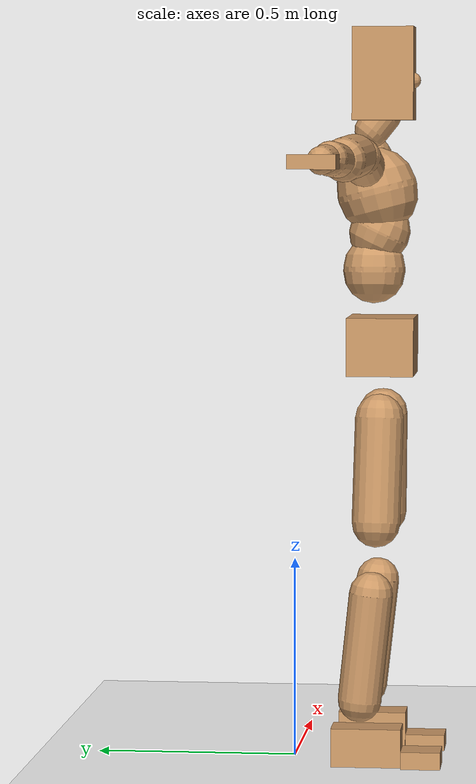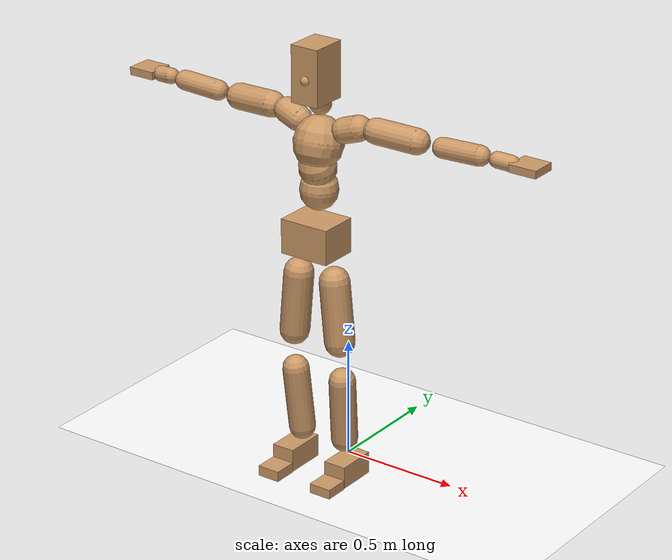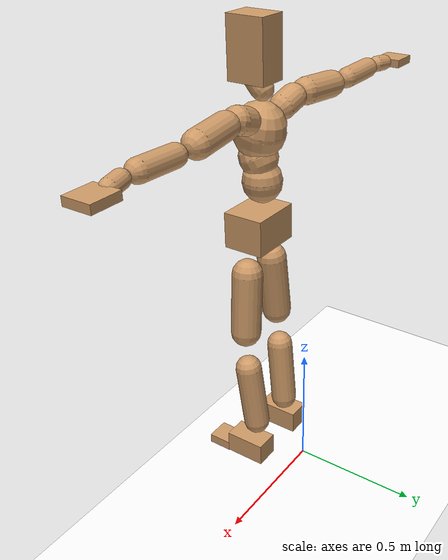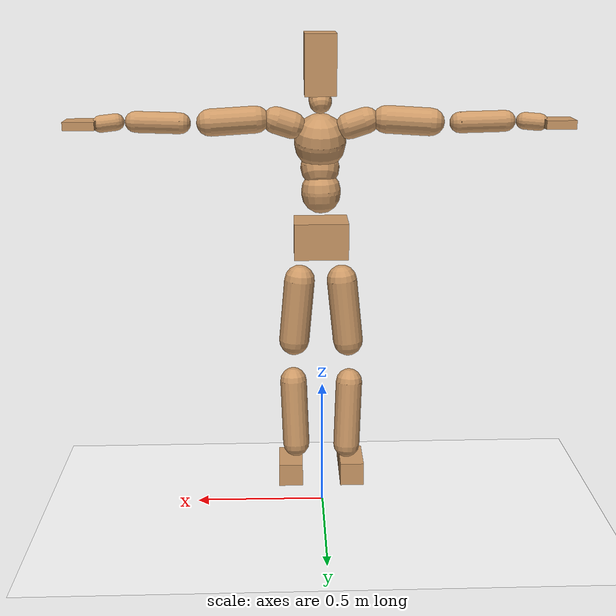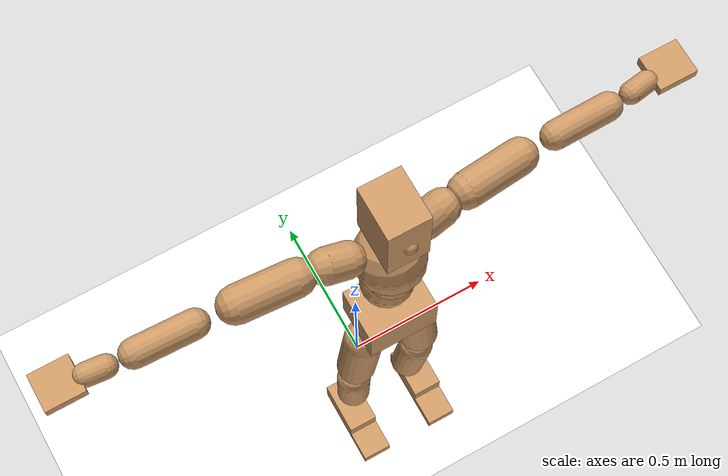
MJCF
<mujoco model="humanoid">
  <option integrator="implicitfast" />

  <visual>
    <global offwidth="1280" offheight="960" />
    <headlight active="1" ambient="0.34 0.34 0.34" diffuse="0.5 0.5 0.5" />
  </visual>

  <default>
    <joint damping="2" stiffness="2" armature="0.01" limited="true" solimplimit="0 .99 .01" />
    <geom condim="1" friction="0.7 0.005 0.0001" solimp=".99 .99 .003" solref="0.015 1" margin="0.001" rgba="0.8 0.6 .4 1" />
    <default class="smplcontact">
      <geom condim="3" friction="1. 0.005 0.0001" solref="0.015 1" solimp="0.98 0.98 0.001" priority="1" />
    </default>
    <default class="stiff_medium">
      <joint stiffness="10" />
    </default>
    <default class="stiff_medium_higher">
      <joint stiffness="50" />
    </default>
    <default class="stiff_high">
      <joint stiffness="100" />
    </default>
  </default>

  <asset>
    <texture type="skybox" builtin="gradient" rgb1="0.99 0.99 0.99" rgb2="0.608 0.828 0.892" width="100" />
    <texture builtin="flat" height="1278" mark="cross" markrgb="1 1 1" name="texgeom" random="0.01" rgb1="0.8 0.6 0.4" rgb2="0.8 0.6 0.4" type="cube" width="127" />
    <texture name="texplane" type="2d" builtin="checker" markrgb="1 1 1" rgb1="0.756 0.772 0.76" rgb2="0.6 0.6 0.6" width="100" height="100" />
    <material name="MatPlane" reflectance="0.5" texture="texplane" texrepeat="1 1" texuniform="true" />
    <material name="geom" texture="texgeom" texuniform="true" />
  </asset>

  <worldbody>
    <light name="tracking_light" pos="0 0 7" dir="0 0 -1" directional="true" cutoff="100" exponent="1" diffuse="1 1 1" specular="0.1 0.1 0.1" mode="trackcom" />
    <camera name="back" pos="0 3 2.4" xyaxes="-1 0 0 0 -1 2" mode="trackcom" />
    <camera name="side" pos="-3 0 2.4" xyaxes="0 -1 0 1 0 2" mode="trackcom" />
    <camera name="front_side" pos="-2.8 -2.8 0.8" xyaxes="0.5 -0.5 0 0.1 0.1 1" mode="trackcom" />
    <geom condim="3" name="floor" pos="0 0 0" rgba="1 1 1 1" size="100 100 .2" type="plane" material="MatPlane" />
    <body name="Pelvis" pos="-0.0018 -0.2233 1.05109" euler="90 0 0">
      <site name="Pelvis" size="0.01" />
      <freejoint name="Pelvis" />
      <geom type="box" pos="-0.0000 -0.0121 -0.0055" size="0.1069 0.0722 0.083" quat="1.0000 0.0000 0.0000 0.0000" density="3165.830099" name="Pelvis" />
      <body name="L_Hip" pos="0.0781875 -0.102825 -0.00765">
        <joint name="L_Hip_x" type="hinge" pos="0 0 0" axis="1 0 0" stiffness="12.190417346938776" range="-160.0 22.92" class="stiff_medium" damping="19.23943835853268" armature="0.013495335550763795"/>
        <joint name="L_Hip_y" type="hinge" pos="0 0 0" axis="0 1 0" stiffness="12.1624156122449" range="-70.0 70.0" class="stiff_medium" damping="12.013485255911052" armature="0.011866378571103064"/>
        <joint name="L_Hip_z" type="hinge" pos="0 0 0" axis="0 0 1" stiffness="12.164813061224491" range="-28.65 90.0" class="stiff_medium" damping="12.81394800146982" armature="0.013497721876857558"/>
        <geom type="capsule" density="2040.816327" fromto="0.0077625 -0.084375 -0.0010125 0.030825 -0.337725 -0.00405" size="0.0615" name="L_Hip" />
        <body name="L_Knee" pos="0.0385875 -0.4221 -0.0050625">
          <joint name="L_Knee_x" type="hinge" pos="0 0 0" axis="1 0 0" range="-5.16 171.89" damping="10.076823862713264" armature="0.013188848617403132" stiffness="2.4059714693877554"/>
          <joint name="L_Knee_y" type="hinge" pos="0 0 0" axis="0 1 0" range="-4.58 6.88" damping="9.48610001940017" armature="0.011596019506642572" stiffness="2.4250264693877552"/>
          <joint name="L_Knee_z" type="hinge" pos="0 0 0" axis="0 0 1" range="-6.88 4.58" damping="10.063496829521753" armature="0.013200099383969117" stiffness="2.3975664285714284"/>
          <geom type="capsule" density="1234.567901" fromto="-0.0030375 -0.08955 -0.0097875 -0.0122625 -0.3582 -0.039375" size="0.0541" name="L_Knee" />
          <body name="L_Ankle" pos="-0.0153 -0.44775 -0.0491625">
            <joint name="L_Ankle_x" type="hinge" pos="0 0 0" axis="1 0 0" range="-45.84 45.84" class="stiff_medium" damping="6.8975328184231754" armature="0.011747130867095517" stiffness="11.250018673469388"/>
            <joint name="L_Ankle_y" type="hinge" pos="0 0 0" axis="0 1 0" range="-74.48 22.92" class="stiff_medium" damping="3.4392113884775433" armature="0.011682135831686723" stiffness="11.250011836734695"/>
            <joint name="L_Ankle_z" type="hinge" pos="0 0 0" axis="0 0 1" range="-4.58 4.58" class="stiff_medium" damping="6.7519785458254935" armature="0.011256596119330307" stiffness="11.25"/>
            <geom type="box" pos="0.0262125 -0.0268875 0.027225" size="0.0483 0.0464 0.085" quat="1.0000 0.0000 0.0000 0.0000" density="449.071558" name="L_Ankle" class="smplcontact" />
            <body name="L_Toe" pos="0.0297 -0.062775 0.134213">
              <joint name="L_Toe_x" type="hinge" pos="0 0 0" axis="1 0 0" range="-91.67 22.92" armature="0.011009874139730367" damping="2.2258578936847395" stiffness="2.25"/>
              <joint name="L_Toe_y" type="hinge" pos="0 0 0" axis="0 1 0" range="-4.58 4.58" armature="0.010711537859158219" damping="2.195493574716446" stiffness="2.25"/>
              <joint name="L_Toe_z" type="hinge" pos="0 0 0" axis="0 0 1" range="-4.58 4.58" armature="0.010108317957718682" damping="2.1327782540558236" stiffness="2.25"/>
              <geom type="box" pos="-0.003375 0.0061875 0.0279" size="0.0478 0.02 0.0496" quat="1.0000 0.0000 0.0000 0.0000" density="423.206892" name="L_Toe" class="smplcontact" />
            </body>
          </body>
        </body>
      </body>
      <body name="R_Hip" pos="-0.0761625 -0.101813 -0.0048375">
        <joint name="R_Hip_x" type="hinge" pos="0 0 0" axis="1 0 0" stiffness="12.190417346938776" range="-160.0 22.92" class="stiff_medium" damping="19.23943835853268" armature="0.013495335550763795"/>
        <joint name="R_Hip_y" type="hinge" pos="0 0 0" axis="0 1 0" stiffness="12.1624156122449" range="-70.0 70.0" class="stiff_medium" damping="12.013485255911052" armature="0.011866378571103064"/>
        <joint name="R_Hip_z" type="hinge" pos="0 0 0" axis="0 0 1" stiffness="12.164813061224491" range="-90.0 28.65" class="stiff_medium" damping="12.81394800146982" armature="0.013497721876857558"/>
        <geom type="capsule" density="2040.816327" fromto="-0.0086625 -0.0860625 -0.002025 -0.034425 -0.344362 -0.0079875" size="0.0606" name="R_Hip" />
        <body name="R_Knee" pos="-0.0430875 -0.430425 -0.0100125">
          <joint name="R_Knee_x" type="hinge" pos="0 0 0" axis="1 0 0" range="-5.16 171.89" damping="10.076823862713264" armature="0.013188848617403132" stiffness="2.4059714693877554"/>
          <joint name="R_Knee_y" type="hinge" pos="0 0 0" axis="0 1 0" range="-6.88 4.58" damping="9.48610001940017" armature="0.011596019506642572" stiffness="2.4250264693877552"/>
          <joint name="R_Knee_z" type="hinge" pos="0 0 0" axis="0 0 1" range="-4.58 6.88" damping="10.063496829521753" armature="0.013200099383969117" stiffness="2.3975664285714284"/>
          <geom type="capsule" density="1234.567901" fromto="0.0036 -0.0896625 -0.0095625 0.014175 -0.358537 -0.038025" size="0.0541" name="R_Knee" />
          <body name="R_Ankle" pos="0.017775 -0.4482 -0.0475875">
            <joint name="R_Ankle_x" type="hinge" pos="0 0 0" axis="1 0 0" range="-45.84 45.84" class="stiff_medium" damping="6.8975328184231754" armature="0.011747130867095517" stiffness="11.250018673469388"/>
            <joint name="R_Ankle_y" type="hinge" pos="0 0 0" axis="0 1 0" range="-22.92 74.48" class="stiff_medium" damping="3.4392113884775433" armature="0.011682135831686723" stiffness="11.250011836734695"/>
            <joint name="R_Ankle_z" type="hinge" pos="0 0 0" axis="0 0 1" range="-4.58 4.58" class="stiff_medium" damping="6.7519785458254935" armature="0.011256596119330307" stiffness="11.25"/>
            <geom type="box" pos="-0.02385 -0.019575 0.0288" size="0.0483 0.0478 0.0865" quat="1.0000 0.0000 0.0000 0.0000" density="434.700981" name="R_Ankle" class="smplcontact" />
            <body name="R_Toe" pos="-0.028575 -0.0541125 0.138713">
              <joint name="R_Toe_x" type="hinge" pos="0 0 0" axis="1 0 0" range="-91.67 22.92" armature="0.011009874139730367" damping="2.2258578936847395" stiffness="2.25"/>
              <joint name="R_Toe_y" type="hinge" pos="0 0 0" axis="0 1 0" range="-4.58 4.58" armature="0.010711537859158219" damping="2.195493574716446" stiffness="2.25"/>
              <joint name="R_Toe_z" type="hinge" pos="0 0 0" axis="0 0 1" range="-4.58 4.58" armature="0.010108317957718682" damping="2.1327782540558236" stiffness="2.25"/>
              <geom type="box" pos="0.004725 0.0050625 0.0255375" size="0.0479 0.0216 0.0493" quat="1.0000 0.0000 0.0000 0.0000" density="407.384095" name="R_Toe" class="smplcontact" />
            </body>
          </body>
        </body>
      </body>
      <body name="Torso" pos="-0.0025 0.109 -0.0267">
        <joint name="Torso_x" type="hinge" pos="0 0 0" axis="1 0 0" range="-25.78 57.3" class="stiff_medium" damping="15.601174334598198" armature="0.01047626555893536" stiffness="10.325844081632653"/>
        <joint name="Torso_y" type="hinge" pos="0 0 0" axis="0 1 0" range="-57.3 57.3" class="stiff_high" damping="22.821338610517834" armature="0.012668353656497757" stiffness="102.77844897959183"/>
        <joint name="Torso_z" type="hinge" pos="0 0 0" axis="0 0 1" range="-34.38 34.38" class="stiff_high" damping="21.414857312023496" armature="0.011223378132891131" stiffness="102.15197872340424"/>
        <geom type="capsule" density="2040.816327" fromto="0.0025 0.0608 0.0005 0.003 0.0743 0.0006" size="0.0769" name="Torso" />
        <body name="Spine" pos="0.0055 0.1352 0.0011">
          <joint name="Spine_x" type="hinge" pos="0 0 0" axis="1 0 0" stiffness="10.390365918367348" range="-25.78 57.3" class="stiff_medium" damping="15.72677453798408" armature="0.010579519926301023"/>
          <joint name="Spine_y" type="hinge" pos="0 0 0" axis="0 1 0" stiffness="10.39918551020408" range="-57.3 57.3" class="stiff_high" damping="9.188969975740159" armature="0.012686866367473126"/>
          <joint name="Spine_z" type="hinge" pos="0 0 0" axis="0 0 1" stiffness="20.94420693877551" range="-34.38 34.38" class="stiff_high" damping="13.309204568844795" armature="0.011746481097584329"/>
          <geom type="capsule" density="2040.816327" fromto="0.0007 0.0238 0.0114 0.0008 0.0291 0.014" size="0.0755" name="Spine" />
          <body name="Chest" pos="0.0015 0.0529 0.0254">
            <joint name="Chest_x" type="hinge" pos="0 0 0" axis="1 0 0" stiffness="10.58973530612245" range="-25.78 57.3" class="stiff_medium" damping="15.923502909070253" armature="0.010641665414267277"/>
            <joint name="Chest_y" type="hinge" pos="0 0 0" axis="0 1 0" stiffness="11.123088958333334" range="-57.3 57.3" class="stiff_high" damping="9.504893386205909" armature="0.012690803368218219"/>
            <joint name="Chest_z" type="hinge" pos="0 0 0" axis="0 0 1" stiffness="21.003702448979592" range="-34.38 34.38" class="stiff_high" damping="13.458190566120912" armature="0.011976915720374792"/>
            <geom type="capsule" density="2040.816327" fromto="-0.0009 0.0682 -0.0173 -0.001 0.0833 -0.0212" size="0.1002" name="Chest" />
            <body name="Neck" pos="-0.0028 0.2139 -0.0429">
              <joint name="Neck_x" type="hinge" pos="0 0 0" axis="1 0 0" range="-28.65 57.3" class="stiff_medium_higher" damping="10.000000000000027" armature="0.010000000000000054" stiffness="50.0"/>
              <joint name="Neck_y" type="hinge" pos="0 0 0" axis="0 1 0" range="-40.11 40.11" class="stiff_medium_higher" damping="10.0" armature="0.01" stiffness="50.0"/>
              <joint name="Neck_z" type="hinge" pos="0 0 0" axis="0 0 1" range="-40.11 40.11" class="stiff_medium_higher" damping="10.000000000000025" armature="0.010000000000000049" stiffness="50.0"/>
              <geom type="capsule" density="1000" fromto="0.001 0.013 0.0103 0.0041 0.052 0.0411" size="0.0436" name="Neck" />
              <body name="Head" pos="0.0052 0.065 0.0513">
                <joint name="Head_x" type="hinge" pos="0 0 0" axis="1 0 0" range="-28.65 57.3" class="stiff_medium_higher" damping="2.0000000000000027" armature="0.010000000000000026" stiffness="50.0"/>
                <joint name="Head_y" type="hinge" pos="0 0 0" axis="0 1 0" range="-40.11 40.11" class="stiff_medium_higher" damping="2.0" armature="0.01" stiffness="50.0"/>
                <joint name="Head_z" type="hinge" pos="0 0 0" axis="0 0 1" range="-40.11 40.11" class="stiff_medium_higher" damping="2.000000000000001" armature="0.010000000000000009" stiffness="50.0"/>
                <geom type="box" pos="-0.0042 0.0876 -0.0116" size="0.0606 0.1154 0.076" quat="1.0000 0.0000 0.0000 0.0000" density="1018.069894" name="Head" />
                <geom type="capsule" name="nose" size="0.02 0.01" pos="0 0.07 0.05" quat="1 0 0 0" mass="0" contype="0" conaffinity="0" />
              </body>
            </body>
            <body name="L_Thorax" pos="0.08668 0.13387 -0.03751">
              <joint name="L_Thorax_x" type="hinge" pos="0 0 0" axis="1 0 0" range="-10.89 4.58" class="stiff_medium_higher" damping="23.484953053517422" armature="0.011814903262347297" stiffness="58.352468877551026"/>
              <joint name="L_Thorax_y" type="hinge" pos="0 0 0" axis="0 1 0" range="-28.65 17.19" class="stiff_medium_higher" damping="24.434884191521103" armature="0.012759387174304943" stiffness="58.49257857142858"/>
              <joint name="L_Thorax_z" type="hinge" pos="0 0 0" axis="0 0 1" range="-31.51 40.11" class="stiff_medium_higher" damping="24.435380867856836" armature="0.012760243243334092" stiffness="58.491032142857144"/>
              <geom type="capsule" density="1000" fromto="0.02002 0.00671 -0.00198 0.08008 0.02684 -0.00781" size="0.0521" name="L_Thorax" />
              <body name="L_Shoulder" pos="0.1001 0.03355 -0.00979">
                <joint name="L_Shoulder_x" type="hinge" pos="0 0 0" axis="1 0 0" range="-97.4 97.4" class="stiff_medium" damping="6.925509502213942" armature="0.011436141131748331" stiffness="11.64988"/>
                <joint name="L_Shoulder_y" type="hinge" pos="0 0 0" axis="0 1 0" range="-108.86 80.21" class="stiff_medium" damping="7.316560324521944" armature="0.012722359703116881" stiffness="11.68809530612245"/>
                <joint name="L_Shoulder_z" type="hinge" pos="0 0 0" axis="0 0 1" range="-97.4 85.94" class="stiff_medium" damping="7.3161640813468045" armature="0.012723435702067624" stiffness="11.685841020408162"/>
                <geom type="capsule" density="1000" fromto="0.05709 -0.00286 -0.00605 0.22847 -0.01122 -0.0242" size="0.0517" name="L_Shoulder" />
                <body name="L_Elbow" pos="0.28556 -0.01408 -0.03025">
                  <joint name="L_Elbow_x" type="hinge" pos="0 0 0" axis="1 0 0" range="-17.19 4.58" damping="5.601396344944928" armature="0.010847020977713206" stiffness="2.314046673469388"/>
                  <joint name="L_Elbow_y" type="hinge" pos="0 0 0" axis="0 1 0" range="-180.0 17.19" damping="6.023798480907977" armature="0.012542680731684354" stiffness="2.3144110204081634"/>
                  <joint name="L_Elbow_z" type="hinge" pos="0 0 0" axis="0 0 1" range="-100.84 4.58" damping="6.024346472417808" armature="0.01254832164075891" stiffness="2.313791530612245"/>
                  <geom type="capsule" density="1000" fromto="0.05478 0.00198 -0.00022 0.21934 0.00792 -0.00099" size="0.0405" name="L_Elbow" />
                  <body name="L_Wrist" pos="0.27412 0.0099 -0.00132">
                    <joint name="L_Wrist_x" type="hinge" pos="0 0 0" axis="1 0 0" range="-180.0 22.92" armature="0.010707540477697047" damping="2.1901175856847197" stiffness="2.2398304489795917"/>
                    <joint name="L_Wrist_y" type="hinge" pos="0 0 0" axis="0 1 0" range="-17.19 17.19" armature="0.01196263499280339" damping="2.317938796584462" stiffness="2.245675918367347"/>
                    <joint name="L_Wrist_z" type="hinge" pos="0 0 0" axis="0 0 1" range="-22.92 22.92" armature="0.012031856829646042" damping="2.3234148559287764" stiffness="2.2433181632653056"/>
                    <geom type="capsule" density="1000" fromto="0.01848 -0.00176 -0.0033 0.07392 -0.00715 -0.0132" size="0.0318" name="L_Wrist" class="smplcontact" />
                    <body name="L_Hand" pos="0.0924 -0.00902 -0.01639">
                      <joint name="L_Hand_x" type="hinge" pos="0 0 0" axis="1 0 0" range="-17.19 17.19" armature="0.010091488937092783" damping="2.1071912899214498" stiffness="2.1999999999999997"/>
                      <joint name="L_Hand_y" type="hinge" pos="0 0 0" axis="0 1 0" range="-51.57 51.57" armature="0.011106432471592882" damping="2.2106176258007326" stiffness="2.1999999999999997"/>
                      <joint name="L_Hand_z" type="hinge" pos="0 0 0" axis="0 0 1" range="-91.67 91.67" armature="0.011376979537969931" damping="2.2373803871283866" stiffness="2.1999999999999997"/>
                      <geom type="box" pos="0.05423 0.0011 -0.00638" size="0.0585 0.0158 0.0538" quat="1.0000 0.0000 0.0000 0.0000" density="400.552564" name="L_Hand" class="smplcontact" />
                    </body>
                  </body>
                </body>
              </body>
            </body>
            <body name="R_Thorax" pos="-0.08998 0.13068 -0.04246">
              <joint name="R_Thorax_x" type="hinge" pos="0 0 0" axis="1 0 0" range="-10.89 4.58" class="stiff_medium_higher" damping="23.484953053517422" armature="0.011814903262347297" stiffness="58.352468877551026"/>
              <joint name="R_Thorax_y" type="hinge" pos="0 0 0" axis="0 1 0" range="-17.19 28.65" class="stiff_medium_higher" damping="24.434884191521103" armature="0.012759387174304943" stiffness="58.49257857142858"/>
              <joint name="R_Thorax_z" type="hinge" pos="0 0 0" axis="0 0 1" range="-40.11 31.51" class="stiff_medium_higher" damping="24.435380867856836" armature="0.012760243243334092" stiffness="58.491032142857144"/>
              <geom type="capsule" density="1000" fromto="-0.02112 0.00715 -0.00198 -0.08448 0.0286 -0.00803" size="0.0511" name="R_Thorax" />
              <body name="R_Shoulder" pos="-0.1056 0.03586 -0.01001">
                <joint name="R_Shoulder_x" type="hinge" pos="0 0 0" axis="1 0 0" range="-97.4 97.4" class="stiff_medium" damping="6.925509502213942" armature="0.011436141131748331" stiffness="11.64988"/>
                <joint name="R_Shoulder_y" type="hinge" pos="0 0 0" axis="0 1 0" range="-80.21 108.86" class="stiff_medium" damping="7.316560324521944" armature="0.012722359703116881" stiffness="11.68809530612245"/>
                <joint name="R_Shoulder_z" type="hinge" pos="0 0 0" axis="0 0 1" range="-85.94 97.4" class="stiff_medium" damping="7.3161640813468045" armature="0.012723435702067624" stiffness="11.685841020408162"/>
                <geom type="capsule" density="1000" fromto="-0.05577 -0.00297 -0.00473 -0.2233 -0.01177 -0.01881" size="0.0531" name="R_Shoulder" />
                <body name="R_Elbow" pos="-0.27907 -0.01463 -0.02354">
                  <joint name="R_Elbow_x" type="hinge" pos="0 0 0" axis="1 0 0" range="-17.19 4.58" damping="5.601396344944928" armature="0.010847020977713206" stiffness="2.314046673469388"/>
                  <joint name="R_Elbow_y" type="hinge" pos="0 0 0" axis="0 1 0" range="-17.19 180.0" damping="6.023798480907977" armature="0.012542680731684354" stiffness="2.3144110204081634"/>
                  <joint name="R_Elbow_z" type="hinge" pos="0 0 0" axis="0 0 1" range="-4.58 100.84" damping="6.024346472417808" armature="0.01254832164075891" stiffness="2.313791530612245"/>
                  <geom type="capsule" density="1000" fromto="-0.05621 0.00176 -0.00121 -0.22462 0.00682 -0.00484" size="0.0408" name="R_Elbow" />
                  <body name="R_Wrist" pos="-0.28083 0.00858 -0.00616">
                    <joint name="R_Wrist_x" type="hinge" pos="0 0 0" axis="1 0 0" range="-180.0 22.92" armature="0.010707540477697047" damping="2.1901175856847197" stiffness="2.2398304489795917"/>
                    <joint name="R_Wrist_y" type="hinge" pos="0 0 0" axis="0 1 0" range="-17.19 17.19" armature="0.01196263499280339" damping="2.317938796584462" stiffness="2.245675918367347"/>
                    <joint name="R_Wrist_z" type="hinge" pos="0 0 0" axis="0 0 1" range="-22.92 22.92" armature="0.012031856829646042" damping="2.3234148559287764" stiffness="2.2433181632653056"/>
                    <geom type="capsule" density="1000" fromto="-0.01859 -0.00132 -0.00231 -0.07447 -0.00539 -0.00913" size="0.0326" name="R_Wrist" class="smplcontact" />
                    <body name="R_Hand" pos="-0.09306 -0.00671 -0.01133">
                      <joint name="R_Hand_x" type="hinge" pos="0 0 0" axis="1 0 0" range="-17.19 17.19" armature="0.010091488937092783" damping="2.1071912899214498" stiffness="2.1999999999999997"/>
                      <joint name="R_Hand_y" type="hinge" pos="0 0 0" axis="0 1 0" range="-51.57 51.57" armature="0.011106432471592882" damping="2.2106176258007326" stiffness="2.1999999999999997"/>
                      <joint name="R_Hand_z" type="hinge" pos="0 0 0" axis="0 0 1" range="-91.67 91.67" armature="0.011376979537969931" damping="2.2373803871283866" stiffness="2.1999999999999997"/>
                      <geom type="box" pos="-0.05082 -0.00099 -0.00869" size="0.0569 0.0164 0.0546" quat="1.0000 0.0000 0.0000 0.0000" density="403.679611" name="R_Hand" class="smplcontact" />
                    </body>
                  </body>
                </body>
              </body>
            </body>
          </body>
        </body>
      </body>
    </body>
  </worldbody>
  <actuator>
    <general name="L_Hip_x" joint="L_Hip_x" biastype="affine" gainprm="350.267339766903" biasprm="-262.4898695344799 -219.42751224489797 -2.565258447804357" ctrllimited="true" ctrlrange="-1 1" forcerange="-438.85502448979594 438.85502448979594" />
    <general name="L_Hip_y" joint="L_Hip_y" biastype="affine" gainprm="267.4654887613407" biasprm="0.0 -218.9234810204082 -2.4026970511822103" ctrllimited="true" ctrlrange="-1 1" forcerange="-437.8469620408164 437.8469620408164" />
    <general name="L_Hip_z" joint="L_Hip_z" biastype="affine" gainprm="226.72168417679922" biasprm="117.23030193212499 -218.96663510204084 -2.562789600293964" ctrllimited="true" ctrlrange="-1 1" forcerange="-437.9332702040817 437.9332702040817" />
    <general name="L_Knee_x" joint="L_Knee_x" biastype="affine" gainprm="334.5617487428154" biasprm="315.0606064269393 -216.53743224489799 -2.519205965678316" ctrllimited="true" ctrlrange="-1 1" forcerange="-433.07486448979597 433.07486448979597" />
    <general name="L_Knee_y" joint="L_Knee_y" biastype="affine" gainprm="21.82684590193453" biasprm="4.380606071068885 -218.25238224489797 -2.3715250048500427" ctrllimited="true" ctrlrange="-1 1" forcerange="-436.50476448979595 436.50476448979595" />
    <general name="L_Knee_z" joint="L_Knee_z" biastype="affine" gainprm="21.579687329883924" biasprm="-4.331001820133772 -215.78097857142856 -2.5158742073804383" ctrllimited="true" ctrlrange="-1 1" forcerange="-431.5619571428571 431.5619571428571" />
    <general name="L_Ankle_x" joint="L_Ankle_x" biastype="affine" gainprm="81.00610103169612" biasprm="0.0 -101.2501680612245 -2.2991776061410585" ctrllimited="true" ctrlrange="-1 1" forcerange="-202.500336122449 202.500336122449" />
    <general name="L_Ankle_y" joint="L_Ankle_y" biastype="affine" gainprm="86.06009430266938" biasprm="-45.557068400879196 -101.25010653061226 -2.292807592318362" ctrllimited="true" ctrlrange="-1 1" forcerange="-202.5002130612245 202.5002130612245" />
    <general name="L_Ankle_z" joint="L_Ankle_z" biastype="affine" gainprm="8.093528073810704" biasprm="0.0 -101.25 -2.2506595152751645" ctrllimited="true" ctrlrange="-1 1" forcerange="-202.5 202.5" />
    <general name="L_Toe_x" joint="L_Toe_x" biastype="affine" gainprm="80.99889798934223" biasprm="-48.59651136021711 -81.0 -0.8903431574738958" ctrllimited="true" ctrlrange="-1 1" forcerange="-162.0 162.0" />
    <general name="L_Toe_y" joint="L_Toe_y" biastype="affine" gainprm="6.474822459048563" biasprm="0.0 -81.0 -0.8781974298865785" ctrllimited="true" ctrlrange="-1 1" forcerange="-162.0 162.0" />
    <general name="L_Toe_z" joint="L_Toe_z" biastype="affine" gainprm="6.474822459048563" biasprm="0.0 -81.0 -0.8531113016223295" ctrllimited="true" ctrlrange="-1 1" forcerange="-162.0 162.0" />
    <general name="R_Hip_x" joint="R_Hip_x" biastype="affine" gainprm="350.267339766903" biasprm="-262.4898695344799 -219.42751224489797 -2.565258447804357" ctrllimited="true" ctrlrange="-1 1" forcerange="-438.85502448979594 438.85502448979594" />
    <general name="R_Hip_y" joint="R_Hip_y" biastype="affine" gainprm="267.4654887613407" biasprm="0.0 -218.9234810204082 -2.4026970511822103" ctrllimited="true" ctrlrange="-1 1" forcerange="-437.8469620408164 437.8469620408164" />
    <general name="R_Hip_z" joint="R_Hip_z" biastype="affine" gainprm="226.72168417679922" biasprm="-117.23030193212499 -218.96663510204084 -2.562789600293964" ctrllimited="true" ctrlrange="-1 1" forcerange="-437.9332702040817 437.9332702040817" />
    <general name="R_Knee_x" joint="R_Knee_x" biastype="affine" gainprm="334.5617487428154" biasprm="315.0606064269393 -216.53743224489799 -2.519205965678316" ctrllimited="true" ctrlrange="-1 1" forcerange="-433.07486448979597 433.07486448979597" />
    <general name="R_Knee_y" joint="R_Knee_y" biastype="affine" gainprm="21.82684590193453" biasprm="-4.380606071068885 -218.25238224489797 -2.3715250048500427" ctrllimited="true" ctrlrange="-1 1" forcerange="-436.50476448979595 436.50476448979595" />
    <general name="R_Knee_z" joint="R_Knee_z" biastype="affine" gainprm="21.579687329883924" biasprm="4.331001820133772 -215.78097857142856 -2.5158742073804383" ctrllimited="true" ctrlrange="-1 1" forcerange="-431.5619571428571 431.5619571428571" />
    <general name="R_Ankle_x" joint="R_Ankle_x" biastype="affine" gainprm="81.00610103169612" biasprm="0.0 -101.2501680612245 -2.2991776061410585" ctrllimited="true" ctrlrange="-1 1" forcerange="-202.500336122449 202.500336122449" />
    <general name="R_Ankle_y" joint="R_Ankle_y" biastype="affine" gainprm="86.06009430266938" biasprm="45.557068400879196 -101.25010653061226 -2.292807592318362" ctrllimited="true" ctrlrange="-1 1" forcerange="-202.5002130612245 202.5002130612245" />
    <general name="R_Ankle_z" joint="R_Ankle_z" biastype="affine" gainprm="8.093528073810704" biasprm="0.0 -101.25 -2.2506595152751645" ctrllimited="true" ctrlrange="-1 1" forcerange="-202.5 202.5" />
    <general name="R_Toe_x" joint="R_Toe_x" biastype="affine" gainprm="80.99889798934223" biasprm="-48.59651136021711 -81.0 -0.8903431574738958" ctrllimited="true" ctrlrange="-1 1" forcerange="-162.0 162.0" />
    <general name="R_Toe_y" joint="R_Toe_y" biastype="affine" gainprm="6.474822459048563" biasprm="0.0 -81.0 -0.8781974298865785" ctrllimited="true" ctrlrange="-1 1" forcerange="-162.0 162.0" />
    <general name="R_Toe_z" joint="R_Toe_z" biastype="affine" gainprm="6.474822459048563" biasprm="0.0 -81.0 -0.8531113016223295" ctrllimited="true" ctrlrange="-1 1" forcerange="-162.0 162.0" />
    <general name="Torso_x" joint="Torso_x" biastype="affine" gainprm="179.67210854115288" biasprm="68.16640420338393 -247.8202579591837 -4.160313155892853" ctrllimited="true" ctrlrange="-1 1" forcerange="-371.73038693877555 371.73038693877555" />
    <general name="Torso_y" joint="Torso_y" biastype="affine" gainprm="246.68644747989222" biasprm="0.0 -246.6682775510204 -4.564267722103567" ctrllimited="true" ctrlrange="-1 1" forcerange="-370.0024163265306 370.0024163265306" />
    <general name="Torso_z" joint="Torso_z" biastype="affine" gainprm="147.10968486781817" biasprm="0.0 -245.16474893617018 -4.282971462404699" ctrllimited="true" ctrlrange="-1 1" forcerange="-367.74712340425526 367.74712340425526" />
    <general name="Spine_x" joint="Spine_x" biastype="affine" gainprm="180.79480363139655" biasprm="68.5923472612135 -249.36878204081634 -4.193806543462421" ctrllimited="true" ctrlrange="-1 1" forcerange="-374.0531730612245 374.0531730612245" />
    <general name="Spine_y" joint="Spine_y" biastype="affine" gainprm="249.59883668861366" biasprm="0.0 -249.58045224489794 -4.5944849878700795" ctrllimited="true" ctrlrange="-1 1" forcerange="-374.3706783673469 374.3706783673469" />
    <general name="Spine_z" joint="Spine_z" biastype="affine" gainprm="150.8093979712465" biasprm="0.0 -251.3304832653061 -4.436401522948265" ctrllimited="true" ctrlrange="-1 1" forcerange="-376.9957248979592 376.9957248979592" />
    <general name="Chest_x" joint="Chest_x" biastype="affine" gainprm="184.26387773258654" biasprm="69.90849092598852 -254.15364734693878 -4.246267442418734" ctrllimited="true" ctrlrange="-1 1" forcerange="-381.2304710204082 381.2304710204082" />
    <general name="Chest_y" joint="Chest_y" biastype="affine" gainprm="266.97379921338467" biasprm="0.0 -266.954135 -4.7524466931029545" ctrllimited="true" ctrlrange="-1 1" forcerange="-400.43120250000004 400.43120250000004" />
    <general name="Chest_z" joint="Chest_z" biastype="affine" gainprm="151.23779719887534" biasprm="0.0 -252.0444293877551 -4.486063522040304" ctrllimited="true" ctrlrange="-1 1" forcerange="-378.06664408163266 378.06664408163266" />
    <general name="Neck_x" joint="Neck_x" biastype="affine" gainprm="27.00198885760427" biasprm="9.000662952534757 -36.0 -0.8000000000000022" ctrllimited="true" ctrlrange="-1 1" forcerange="-72.0 72.0" />
    <general name="Neck_y" joint="Neck_y" biastype="affine" gainprm="25.20185626709732" biasprm="0.0 -36.0 -0.8" ctrllimited="true" ctrlrange="-1 1" forcerange="-72.0 72.0" />
    <general name="Neck_z" joint="Neck_z" biastype="affine" gainprm="25.20185626709732" biasprm="0.0 -36.0 -0.800000000000002" ctrllimited="true" ctrlrange="-1 1" forcerange="-72.0 72.0" />
    <general name="Head_x" joint="Head_x" biastype="affine" gainprm="18.001325905069514" biasprm="6.000441968356505 -24.0 -0.8000000000000012" ctrllimited="true" ctrlrange="-1 1" forcerange="-48.0 48.0" />
    <general name="Head_y" joint="Head_y" biastype="affine" gainprm="16.801237511398213" biasprm="0.0 -24.0 -0.8" ctrllimited="true" ctrlrange="-1 1" forcerange="-48.0 48.0" />
    <general name="Head_z" joint="Head_z" biastype="affine" gainprm="16.801237511398213" biasprm="0.0 -24.0 -0.8000000000000004" ctrllimited="true" ctrlrange="-1 1" forcerange="-48.0 48.0" />
    <general name="L_Thorax_x" joint="L_Thorax_x" biastype="affine" gainprm="18.906370442093692" biasprm="-7.711648189373708 -140.04592530612246 -1.878796244281394" ctrllimited="true" ctrlrange="-1 1" forcerange="-280.0918506122449 280.0918506122449" />
    <general name="L_Thorax_y" joint="L_Thorax_y" biastype="affine" gainprm="56.157011727582464" biasprm="-14.039252931895616 -140.38218857142857 -1.9547907353216882" ctrllimited="true" ctrlrange="-1 1" forcerange="-280.76437714285714 280.76437714285714" />
    <general name="L_Thorax_z" joint="L_Thorax_z" biastype="affine" gainprm="87.73688584405964" biasprm="10.535286487837375 -140.37847714285715 -1.954830469428547" ctrllimited="true" ctrlrange="-1 1" forcerange="-280.7569542857143 280.7569542857143" />
    <general name="L_Shoulder_x" joint="L_Shoulder_x" biastype="affine" gainprm="95.06026349386505" biasprm="0.0 -55.91942399999999 -1.846802533923718" ctrllimited="true" ctrlrange="-1 1" forcerange="-111.83884799999998 111.83884799999998" />
    <general name="L_Shoulder_y" joint="L_Shoulder_y" biastype="affine" gainprm="92.56674184278414" biasprm="-14.026747521001564 -56.10285746938776 -1.951082753205852" ctrllimited="true" ctrlrange="-1 1" forcerange="-112.20571493877551 112.20571493877551" />
    <general name="L_Shoulder_z" joint="L_Shoulder_z" biastype="affine" gainprm="89.7440800375507" biasprm="-5.609616871551944 -56.09203689795918 -1.950977088359148" ctrllimited="true" ctrlrange="-1 1" forcerange="-112.18407379591837 112.18407379591837" />
    <general name="L_Elbow_x" joint="L_Elbow_x" biastype="affine" gainprm="15.82633724808071" biasprm="-9.167207749117953 -83.30568024489797 -0.8962234151911885" ctrllimited="true" ctrlrange="-1 1" forcerange="-166.61136048979594 166.61136048979594" />
    <general name="L_Elbow_y" joint="L_Elbow_y" biastype="affine" gainprm="143.37559998082332" biasprm="-118.37811974683223 -83.31879673469388 -0.9638077569452763" ctrllimited="true" ctrlrange="-1 1" forcerange="-166.63759346938775 166.63759346938775" />
    <general name="L_Elbow_z" joint="L_Elbow_z" biastype="affine" gainprm="76.62969758228138" biasprm="-69.9713023076305 -83.29649510204082 -0.9638954355868494" ctrllimited="true" ctrlrange="-1 1" forcerange="-166.59299020408164 166.59299020408164" />
    <general name="L_Wrist_x" joint="L_Wrist_x" biastype="affine" gainprm="23.797899177015026" biasprm="-18.421910125791054 -13.43898269387755 -0.876047034273888" ctrllimited="true" ctrlrange="-1 1" forcerange="-26.8779653877551 26.8779653877551" />
    <general name="L_Wrist_y" joint="L_Wrist_y" biastype="affine" gainprm="4.042514408369691" biasprm="0.0 -13.474055510204082 -0.9271755186337848" ctrllimited="true" ctrlrange="-1 1" forcerange="-26.948111020408163 26.948111020408163" />
    <general name="L_Wrist_z" joint="L_Wrist_z" biastype="affine" gainprm="5.384360182093428" biasprm="0.0 -13.459908979591834 -0.9293659423715106" ctrllimited="true" ctrlrange="-1 1" forcerange="-26.919817959183668 26.919817959183668" />
    <general name="L_Hand_x" joint="L_Hand_x" biastype="affine" gainprm="3.9602916991152934" biasprm="0.0 -13.2 -0.8428765159685799" ctrllimited="true" ctrlrange="-1 1" forcerange="-26.4 26.4" />
    <general name="L_Hand_y" joint="L_Hand_y" biastype="affine" gainprm="11.880875097345879" biasprm="0.0 -13.2 -0.884247050320293" ctrllimited="true" ctrlrange="-1 1" forcerange="-26.4 26.4" />
    <general name="L_Hand_z" joint="L_Hand_z" biastype="affine" gainprm="21.11925189400226" biasprm="0.0 -13.2 -0.8949521548513547" ctrllimited="true" ctrlrange="-1 1" forcerange="-26.4 26.4" />
    <general name="R_Thorax_x" joint="R_Thorax_x" biastype="affine" gainprm="18.906370442093692" biasprm="-7.711648189373708 -140.04592530612246 -1.878796244281394" ctrllimited="true" ctrlrange="-1 1" forcerange="-280.0918506122449 280.0918506122449" />
    <general name="R_Thorax_y" joint="R_Thorax_y" biastype="affine" gainprm="56.157011727582464" biasprm="14.039252931895607 -140.38218857142857 -1.9547907353216882" ctrllimited="true" ctrlrange="-1 1" forcerange="-280.76437714285714 280.76437714285714" />
    <general name="R_Thorax_z" joint="R_Thorax_z" biastype="affine" gainprm="87.73688584405964" biasprm="-10.535286487837375 -140.37847714285715 -1.954830469428547" ctrllimited="true" ctrlrange="-1 1" forcerange="-280.7569542857143 280.7569542857143" />
    <general name="R_Shoulder_x" joint="R_Shoulder_x" biastype="affine" gainprm="95.06026349386505" biasprm="0.0 -55.91942399999999 -1.846802533923718" ctrllimited="true" ctrlrange="-1 1" forcerange="-111.83884799999998 111.83884799999998" />
    <general name="R_Shoulder_y" joint="R_Shoulder_y" biastype="affine" gainprm="92.56674184278414" biasprm="14.026747521001564 -56.10285746938776 -1.951082753205852" ctrllimited="true" ctrlrange="-1 1" forcerange="-112.20571493877551 112.20571493877551" />
    <general name="R_Shoulder_z" joint="R_Shoulder_z" biastype="affine" gainprm="89.7440800375507" biasprm="5.609616871551932 -56.09203689795918 -1.950977088359148" ctrllimited="true" ctrlrange="-1 1" forcerange="-112.18407379591837 112.18407379591837" />
    <general name="R_Elbow_x" joint="R_Elbow_x" biastype="affine" gainprm="15.82633724808071" biasprm="-9.167207749117953 -83.30568024489797 -0.8962234151911885" ctrllimited="true" ctrlrange="-1 1" forcerange="-166.61136048979594 166.61136048979594" />
    <general name="R_Elbow_y" joint="R_Elbow_y" biastype="affine" gainprm="143.37559998082332" biasprm="118.37811974683223 -83.31879673469388 -0.9638077569452763" ctrllimited="true" ctrlrange="-1 1" forcerange="-166.63759346938775 166.63759346938775" />
    <general name="R_Elbow_z" joint="R_Elbow_z" biastype="affine" gainprm="76.62969758228138" biasprm="69.97130230763048 -83.29649510204082 -0.9638954355868494" ctrllimited="true" ctrlrange="-1 1" forcerange="-166.59299020408164 166.59299020408164" />
    <general name="R_Wrist_x" joint="R_Wrist_x" biastype="affine" gainprm="23.797899177015026" biasprm="-18.421910125791054 -13.43898269387755 -0.876047034273888" ctrllimited="true" ctrlrange="-1 1" forcerange="-26.8779653877551 26.8779653877551" />
    <general name="R_Wrist_y" joint="R_Wrist_y" biastype="affine" gainprm="4.042514408369691" biasprm="0.0 -13.474055510204082 -0.9271755186337848" ctrllimited="true" ctrlrange="-1 1" forcerange="-26.948111020408163 26.948111020408163" />
    <general name="R_Wrist_z" joint="R_Wrist_z" biastype="affine" gainprm="5.384360182093428" biasprm="0.0 -13.459908979591834 -0.9293659423715106" ctrllimited="true" ctrlrange="-1 1" forcerange="-26.919817959183668 26.919817959183668" />
    <general name="R_Hand_x" joint="R_Hand_x" biastype="affine" gainprm="3.9602916991152934" biasprm="0.0 -13.2 -0.8428765159685799" ctrllimited="true" ctrlrange="-1 1" forcerange="-26.4 26.4" />
    <general name="R_Hand_y" joint="R_Hand_y" biastype="affine" gainprm="11.880875097345879" biasprm="0.0 -13.2 -0.884247050320293" ctrllimited="true" ctrlrange="-1 1" forcerange="-26.4 26.4" />
    <general name="R_Hand_z" joint="R_Hand_z" biastype="affine" gainprm="21.11925189400226" biasprm="0.0 -13.2 -0.8949521548513547" ctrllimited="true" ctrlrange="-1 1" forcerange="-26.4 26.4" />
  </actuator>
  <contact>
    <exclude body1="Torso" body2="Chest" />
    <exclude body1="Head" body2="Chest" />
    <exclude body1="R_Knee" body2="R_Toe" />
    <exclude body1="R_Knee" body2="L_Ankle" />
    <exclude body1="R_Knee" body2="L_Toe" />
    <exclude body1="L_Knee" body2="L_Toe" />
    <exclude body1="L_Knee" body2="R_Ankle" />
    <exclude body1="L_Knee" body2="R_Toe" />
    <exclude body1="L_Shoulder" body2="Chest" />
    <exclude body1="R_Shoulder" body2="Chest" />
  </contact>
  <sensor>
    <framelinvel name="sensor_Pelvis_framelinvel" objtype="xbody" objname="Pelvis" />
    <framelinvel name="sensor_L_Hip_framelinvel" objtype="xbody" objname="L_Hip" />
    <framelinvel name="sensor_L_Knee_framelinvel" objtype="xbody" objname="L_Knee" />
    <framelinvel name="sensor_L_Ankle_framelinvel" objtype="xbody" objname="L_Ankle" />
    <framelinvel name="sensor_L_Toe_framelinvel" objtype="xbody" objname="L_Toe" />
    <framelinvel name="sensor_R_Hip_framelinvel" objtype="xbody" objname="R_Hip" />
    <framelinvel name="sensor_R_Knee_framelinvel" objtype="xbody" objname="R_Knee" />
    <framelinvel name="sensor_R_Ankle_framelinvel" objtype="xbody" objname="R_Ankle" />
    <framelinvel name="sensor_R_Toe_framelinvel" objtype="xbody" objname="R_Toe" />
    <framelinvel name="sensor_Torso_framelinvel" objtype="xbody" objname="Torso" />
    <framelinvel name="sensor_Spine_framelinvel" objtype="xbody" objname="Spine" />
    <framelinvel name="sensor_Chest_framelinvel" objtype="xbody" objname="Chest" />
    <framelinvel name="sensor_Neck_framelinvel" objtype="xbody" objname="Neck" />
    <framelinvel name="sensor_Head_framelinvel" objtype="xbody" objname="Head" />
    <framelinvel name="sensor_L_Thorax_framelinvel" objtype="xbody" objname="L_Thorax" />
    <framelinvel name="sensor_L_Shoulder_framelinvel" objtype="xbody" objname="L_Shoulder" />
    <framelinvel name="sensor_L_Elbow_framelinvel" objtype="xbody" objname="L_Elbow" />
    <framelinvel name="sensor_L_Wrist_framelinvel" objtype="xbody" objname="L_Wrist" />
    <framelinvel name="sensor_L_Hand_framelinvel" objtype="xbody" objname="L_Hand" />
    <framelinvel name="sensor_R_Thorax_framelinvel" objtype="xbody" objname="R_Thorax" />
    <framelinvel name="sensor_R_Shoulder_framelinvel" objtype="xbody" objname="R_Shoulder" />
    <framelinvel name="sensor_R_Elbow_framelinvel" objtype="xbody" objname="R_Elbow" />
    <framelinvel name="sensor_R_Wrist_framelinvel" objtype="xbody" objname="R_Wrist" />
    <framelinvel name="sensor_R_Hand_framelinvel" objtype="xbody" objname="R_Hand" />
    <frameangvel name="sensor_Pelvis_frameangvel" objtype="xbody" objname="Pelvis" />
    <frameangvel name="sensor_L_Hip_frameangvel" objtype="xbody" objname="L_Hip" />
    <frameangvel name="sensor_L_Knee_frameangvel" objtype="xbody" objname="L_Knee" />
    <frameangvel name="sensor_L_Ankle_frameangvel" objtype="xbody" objname="L_Ankle" />
    <frameangvel name="sensor_L_Toe_frameangvel" objtype="xbody" objname="L_Toe" />
    <frameangvel name="sensor_R_Hip_frameangvel" objtype="xbody" objname="R_Hip" />
    <frameangvel name="sensor_R_Knee_frameangvel" objtype="xbody" objname="R_Knee" />
    <frameangvel name="sensor_R_Ankle_frameangvel" objtype="xbody" objname="R_Ankle" />
    <frameangvel name="sensor_R_Toe_frameangvel" objtype="xbody" objname="R_Toe" />
    <frameangvel name="sensor_Torso_frameangvel" objtype="xbody" objname="Torso" />
    <frameangvel name="sensor_Spine_frameangvel" objtype="xbody" objname="Spine" />
    <frameangvel name="sensor_Chest_frameangvel" objtype="xbody" objname="Chest" />
    <frameangvel name="sensor_Neck_frameangvel" objtype="xbody" objname="Neck" />
    <frameangvel name="sensor_Head_frameangvel" objtype="xbody" objname="Head" />
    <frameangvel name="sensor_L_Thorax_frameangvel" objtype="xbody" objname="L_Thorax" />
    <frameangvel name="sensor_L_Shoulder_frameangvel" objtype="xbody" objname="L_Shoulder" />
    <frameangvel name="sensor_L_Elbow_frameangvel" objtype="xbody" objname="L_Elbow" />
    <frameangvel name="sensor_L_Wrist_frameangvel" objtype="xbody" objname="L_Wrist" />
    <frameangvel name="sensor_L_Hand_frameangvel" objtype="xbody" objname="L_Hand" />
    <frameangvel name="sensor_R_Thorax_frameangvel" objtype="xbody" objname="R_Thorax" />
    <frameangvel name="sensor_R_Shoulder_frameangvel" objtype="xbody" objname="R_Shoulder" />
    <frameangvel name="sensor_R_Elbow_frameangvel" objtype="xbody" objname="R_Elbow" />
    <frameangvel name="sensor_R_Wrist_frameangvel" objtype="xbody" objname="R_Wrist" />
    <frameangvel name="sensor_R_Hand_frameangvel" objtype="xbody" objname="R_Hand" />
    <subtreelinvel name="Chest_subtreelinvel" body="Chest" />
    <gyro name="Pelvis_gyro" site="Pelvis" />
  </sensor>
</mujoco>
